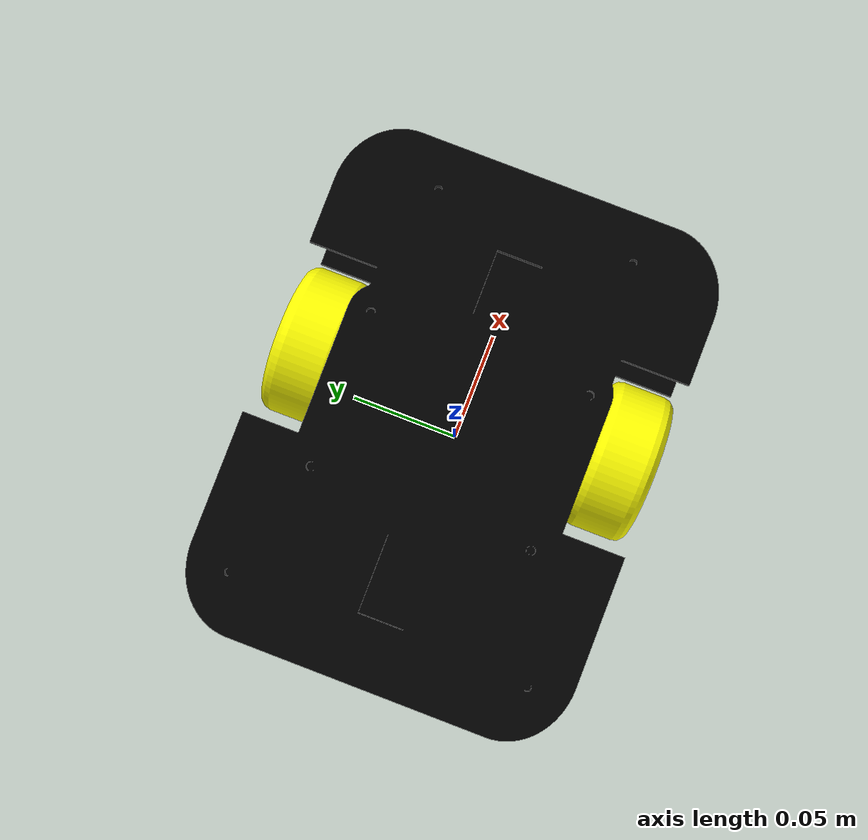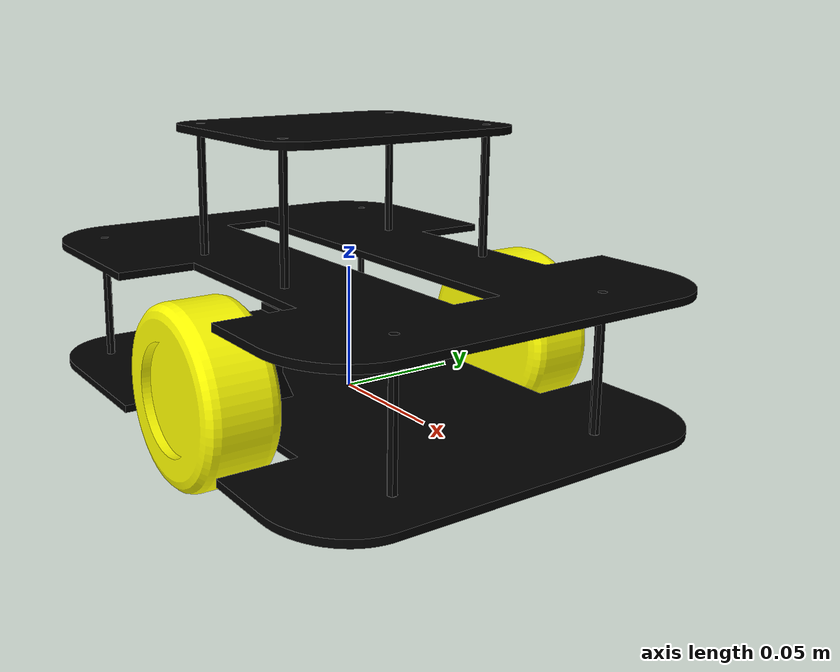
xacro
<?xml version="1.0"?>

<robot xmlns:xacro="http://www.ros.org/wiki/xacro"  name="robot">

    <xacro:include filename="inertial_macros.xacro"/>

    <xacro:property name="chassis_length" value="0.23" />
    <xacro:property name="chassis_width" value="0.14" />
    <xacro:property name="chassis_height" value="0.10" />
    <xacro:property name="chassis_mass" value="1.0" />
    <xacro:property name="wheel_radius" value="0.033" />
    <xacro:property name="wheel_thickness" value="0.026" />
    <xacro:property name="wheel_mass" value="0.5" />
    <xacro:property name="wheel_offset_x" value="0.025" />
    <xacro:property name="wheel_offset_y" value="${chassis_width/2 + wheel_thickness/2 - 0.01}" />
    <xacro:property name="wheel_offset_z" value="-${chassis_width/2 - 0.036}" />
    <xacro:property name="caster_wheel_radius" value="0.012" />
    <xacro:property name="caster_wheel_mass" value="0.5" />
    <xacro:property name="caster_wheel_offset_x" value="-0.08" />
    <xacro:property name="caster_wheel_offset_z" value="-0.058" />

    <xacro:property name="meshpath" value="/home/dev/dev_ws/src/wally" />

    <material name="yellow">
        <color rgba="1 1 0 1 " />
    </material>

    <material name="black">
        <color rgba="0 0 0 1 " />-
    </material>

    <material name="red">
        <color rgba="1 0 0 1 " />
    </material>

    <material name="grey">
        <color rgba="0.5 0.5 0.5 1 " />
    </material>

    <!-- BASE LINK-->

    <link name="base_link"></link>

    <joint name="base_footprint_joint" type="fixed">
        <parent link="base_link"/>
        <child link="base_footprint"/>
        <origin xyz="0 0 0" rpy="0 0 0"/>
    </joint>

    <link name="base_footprint"></link>

    <!-- CHASSIS-->

    <joint name="chassis_joint" type="fixed">
        <parent link="base_link"/>
        <child link="chassis"/>
        <origin xyz="-0.01 0 ${chassis_height/2}" />
    </joint>
z
    <link name="chassis">
        <visual>
            <geometry>
                <mesh filename="file://${meshpath}/meshes/stl/Cube.023.stl" scale="1.0 1.0 1.0"/>
            </geometry>
            <material name="black"/>
        </visual>
        <collision>
            <origin xyz="0 0 0" />
            <geometry>
                <box size="${chassis_length} ${chassis_width} ${chassis_height}"/>
            </geometry>
        </collision>
        <xacro:inertial_box mass="0.5" x="${chassis_length}" y="${chassis_width}" z="${chassis_height}">
            <origin xyz="0 0 0" rpy="0 0 0"/>
        </xacro:inertial_box>
    </link>

    <gazebo reference="chassis">
        <material>Gazebo/Black</material>
    </gazebo>

    <!-- LEFT WHEEL LINK-->

    <joint name="left_wheel_joint" type="continuous">
        <origin xyz="${wheel_offset_x} ${wheel_offset_y} ${wheel_offset_z}" rpy="-${pi/2} 0 0"/>
        <parent link="chassis"/>
        <child link="left_wheel"/>
        <axis xyz="0 0 1"/>

    </joint>

    <link name="left_wheel">
        <visual>
            <geometry>
                <mesh filename="file://${meshpath}/meshes/stl/Cylinder.036.stl" scale="1.0 1.0 1.0"/>
            </geometry>
            <material name="yellow"/>
        </visual>
        <collision>
            <geometry>
                <sphere radius="${wheel_radius}"/>
            </geometry>
        </collision>
        <xacro:inertial_cylinder mass="${wheel_mass}" length="${wheel_thickness}" radius="${wheel_radius}">
            <origin xyz="0 0 0" rpy="0 0 0"/>
        </xacro:inertial_cylinder>
    </link>

    <gazebo reference="left_wheel">
        <material>Gazebo/Yellow</material>
    </gazebo>

    <!-- RIGHT WHEEL LINK-->blue

    <joint name="right_wheel_joint" type="continuous">
        <origin xyz="${wheel_offset_x} -${wheel_offset_y} ${wheel_offset_z}" rpy="${pi/2} 0 0"/>
        <parent link="chassis"/>
        <child link="right_wheel"/>
        <axis xyz="0 0 -1"/>

    </joint>

    <link name="right_wheel">
        <visual>
            <geometry>
                <mesh filename="file://${meshpath}/meshes/stl/Cylinder.036.stl" scale="1.0 1.0 1.0"/>
            </geometry>
            <material name="yellow"/>
        </visual>
        <collision>
            <geometry>
                <sphere radius="${wheel_radius}"/>
            </geometry>
        </collision>
        <xacro:inertial_cylinder mass="${wheel_mass}" length="${wheel_thickness}" radius="${wheel_radius}">
            <origin xyz="0 0 0" rpy="0 0 0"/>
        </xacro:inertial_cylinder>
    </link>

    <gazebo reference="right_wheel">
        <material>Gazebo/Yellow</material>
    </gazebo>

    <!-- CASTER WHEEL-->

    <joint name="caster_wheel_joint" type="fixed">
        <parent link="chassis"/>
        <child link="caster_wheel"/>
        <origin xyz="${caster_wheel_offset_x} 0 ${caster_wheel_offset_z}"/>
    </joint>

    <link name="caster_wheel">
        <visual>
            <geometry>
                <mesh filename="file://${meshpath}/meshes/stl/Cube.020.stl" scale="1.0 1.0 1.0"/>
            </geometry>
            <material name="grey"/>
        </visual>
        <collision>
            <geometry>
                <sphere radius="${caster_wheel_radius}"/>
            </geometry>
        </collision>
        <xacro:inertial_sphere mass="${caster_wheel_mass}" radius="${caster_wheel_radius}">
            <origin xyz="0 0 0" rpy="0 0 0"/>
        </xacro:inertial_sphere>
    </link>

    <gazebo reference="caster_wheel">
        <material>Gazebo/Yellow</material>
        <mu1 value="0.0001"/>
        <mu2 value="0.0001"/>
    </gazebo>

</robot>
